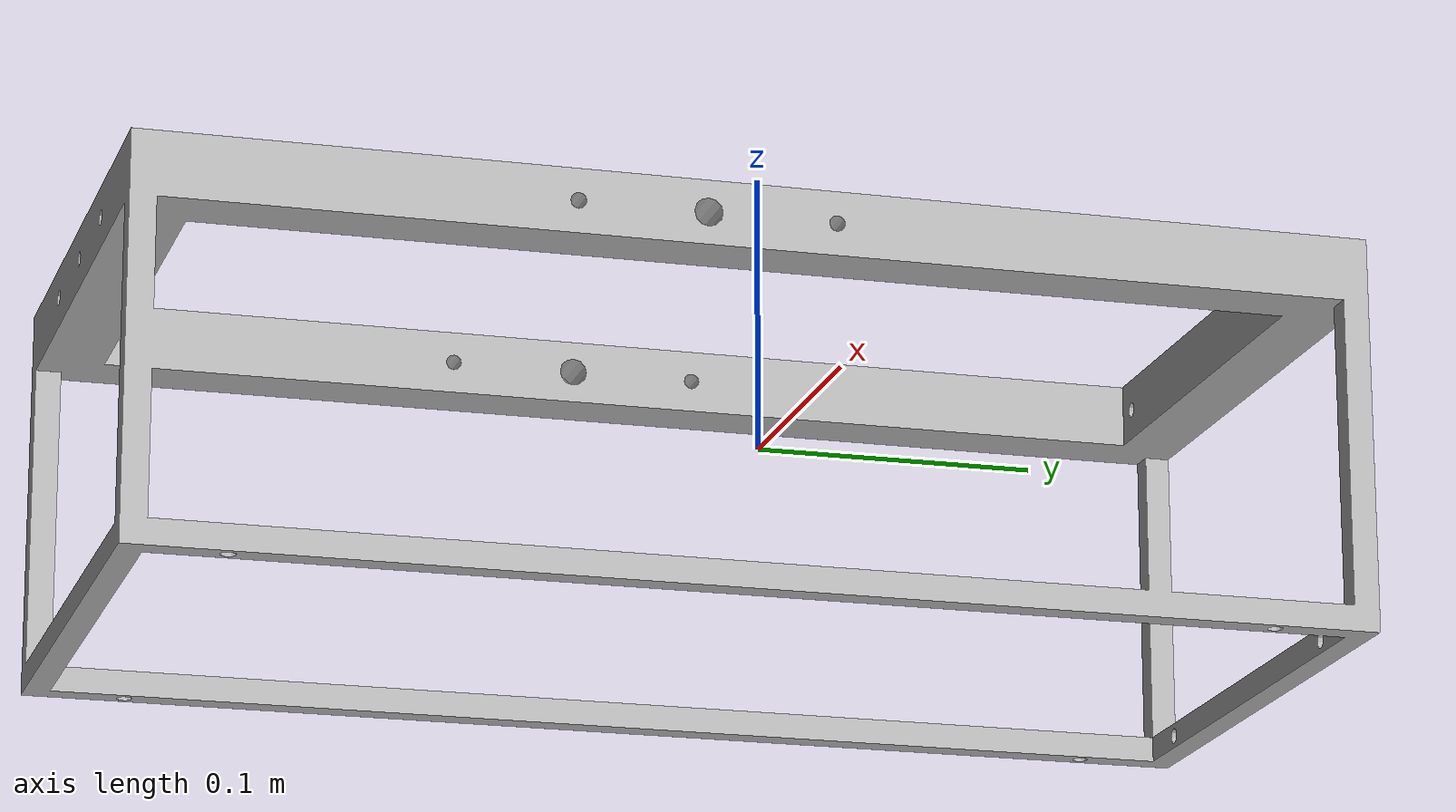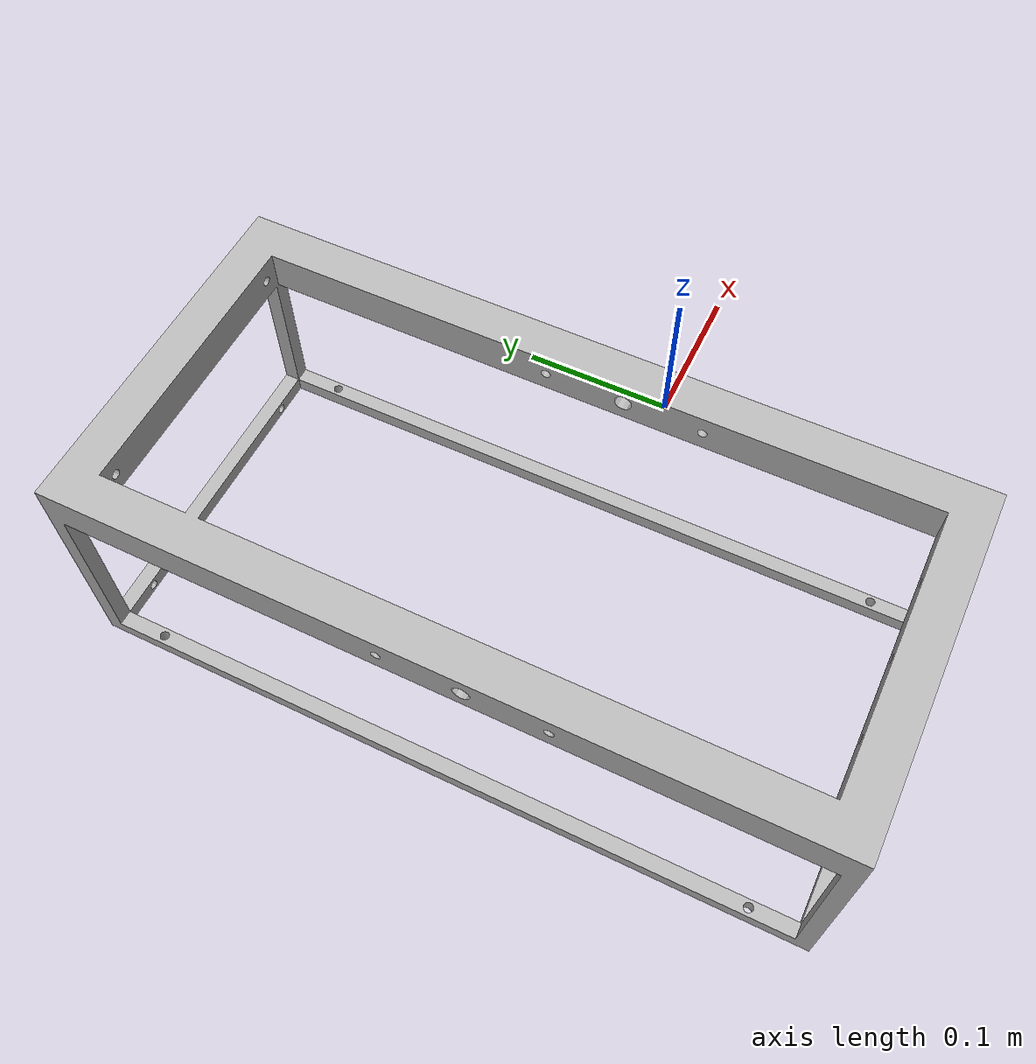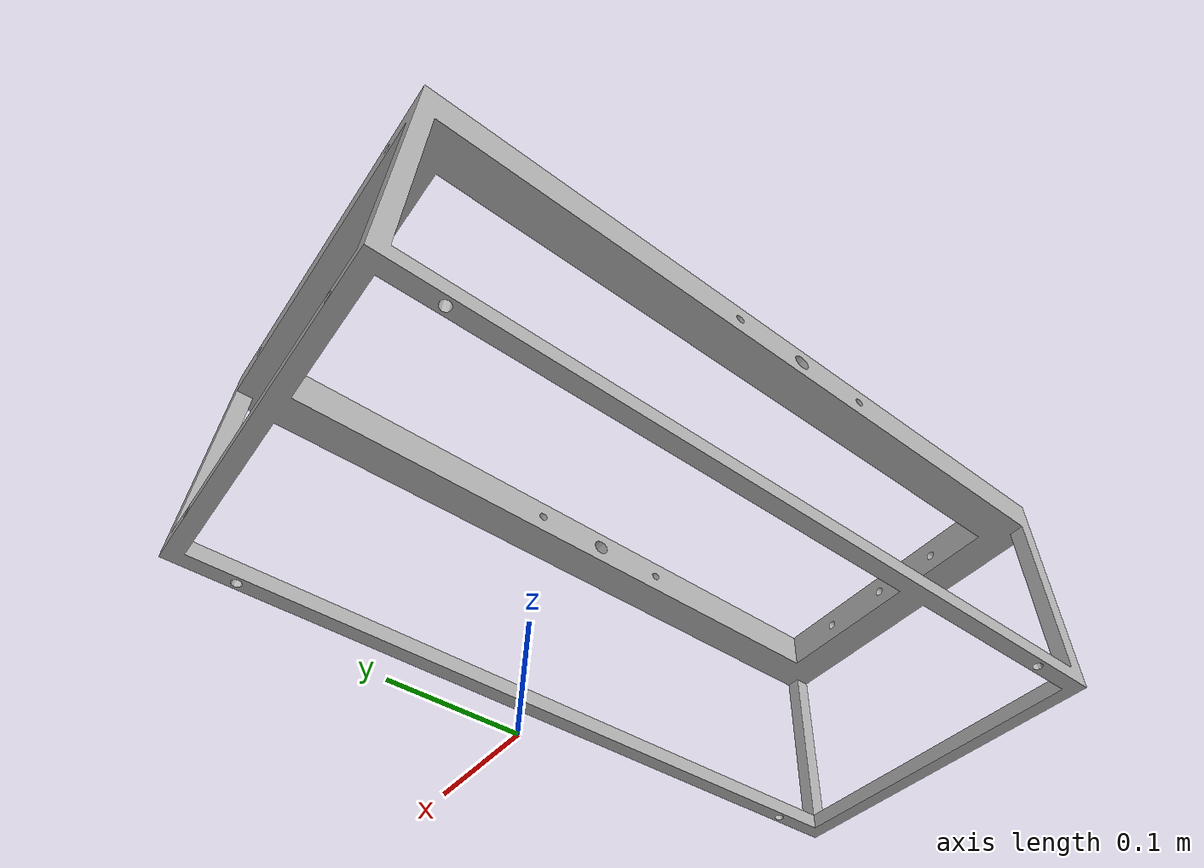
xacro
<?xml version="1.0" ?>
<robot name="SIRIUSROVER_DX" xmlns:xacro="http://www.ros.org/wiki/xacro">

<xacro:include filename="$(find SIRIUSROVER_DX_description)/urdf/materials.xacro" />
<xacro:include filename="$(find SIRIUSROVER_DX_description)/urdf/SIRIUSROVER_DX.trans" />
<xacro:include filename="$(find SIRIUSROVER_DX_description)/urdf/SIRIUSROVER_DX.gazebo" />
<link name="base_link">
  <inertial>
    <origin xyz="-0.18 0.02255492508769995 0.08772092355261586" rpy="0 0 0"/>
    <mass value="7.782560572066453"/>
    <inertia ixx="0.24698" iyy="0.086974" izz="0.295958" ixy="0.0" iyz="-0.000187" ixz="-0.0"/>
  </inertial>
  <visual>
    <origin xyz="0 0 0" rpy="0 0 0"/>
    <geometry>
      <mesh filename="package://SIRIUSROVER_DX_description/meshes/base_link.stl" scale="0.001 0.001 0.001"/>
    </geometry>
    <material name="silver"/>
  </visual>
  <collision>
    <origin xyz="0 0 0" rpy="0 0 0"/>
    <geometry>
      <mesh filename="package://SIRIUSROVER_DX_description/meshes/base_link.stl" scale="0.001 0.001 0.001"/>
    </geometry>
  </collision>
</link>

</robot>

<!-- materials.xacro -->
<robot name="SIRIUSROVER_DX" xmlns:xacro="http://www.ros.org/wiki/xacro" >

<material name="silver">
  <color rgba="0.700 0.700 0.700 1.000"/>
</material>

</robot>

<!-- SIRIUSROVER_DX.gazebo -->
<robot name="SIRIUSROVER_DX" xmlns:xacro="http://www.ros.org/wiki/xacro" >

<xacro:property name="body_color" value="Gazebo/Silver" />

<gazebo>
  <plugin name="control" filename="libgazebo_ros_control.so"/>
</gazebo>
<gazebo reference="base_link">
  <material>${body_color}</material>
  <mu1>0.2</mu1>
  <mu2>0.2</mu2>
  <selfCollide>true</selfCollide>
  <gravity>true</gravity>
</gazebo>

</robot>
